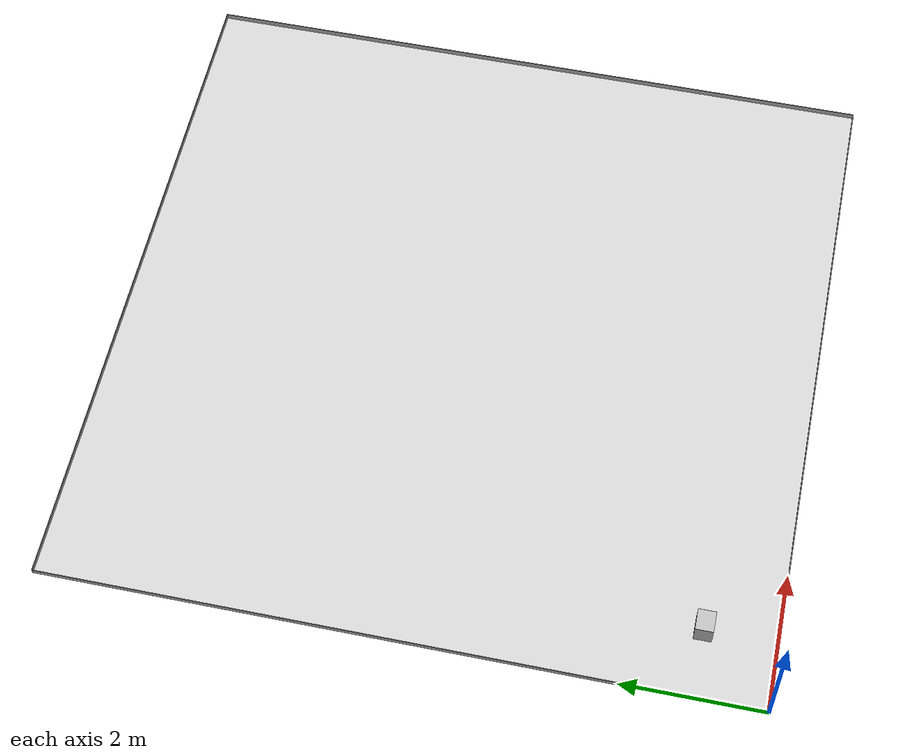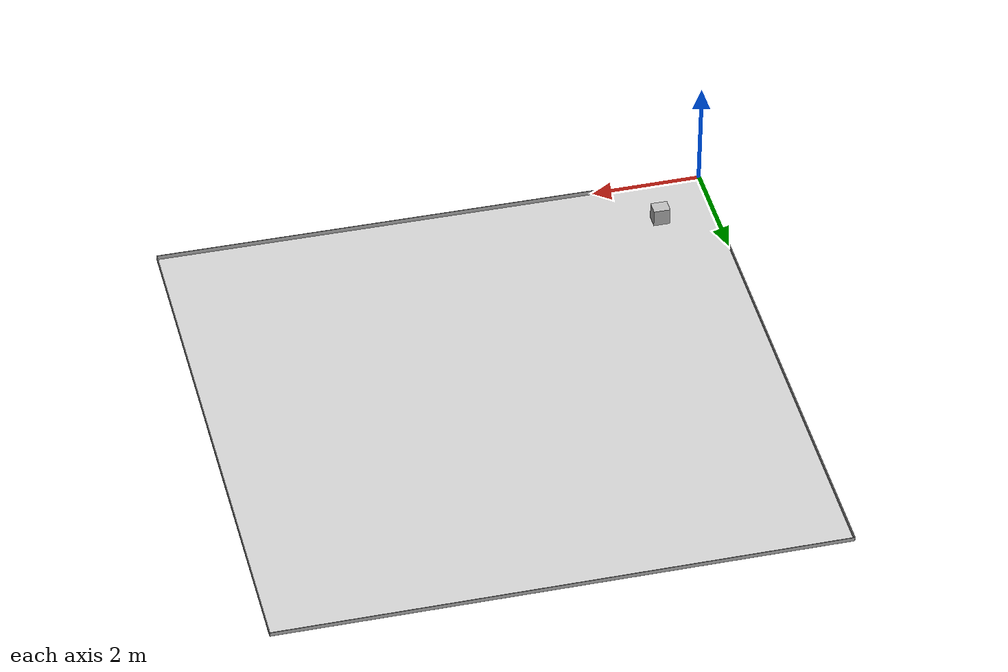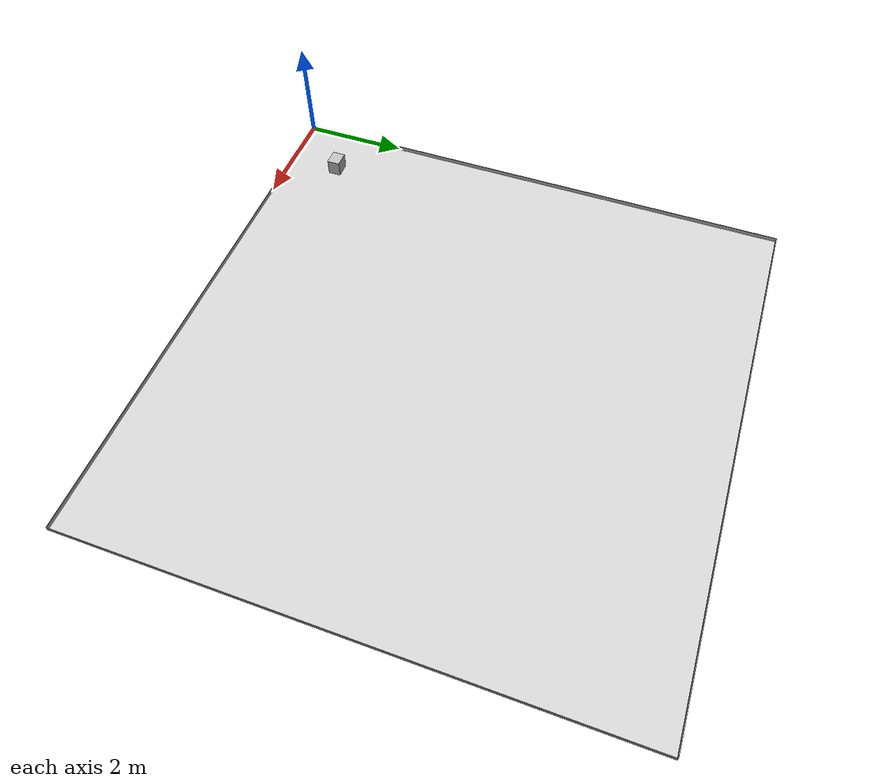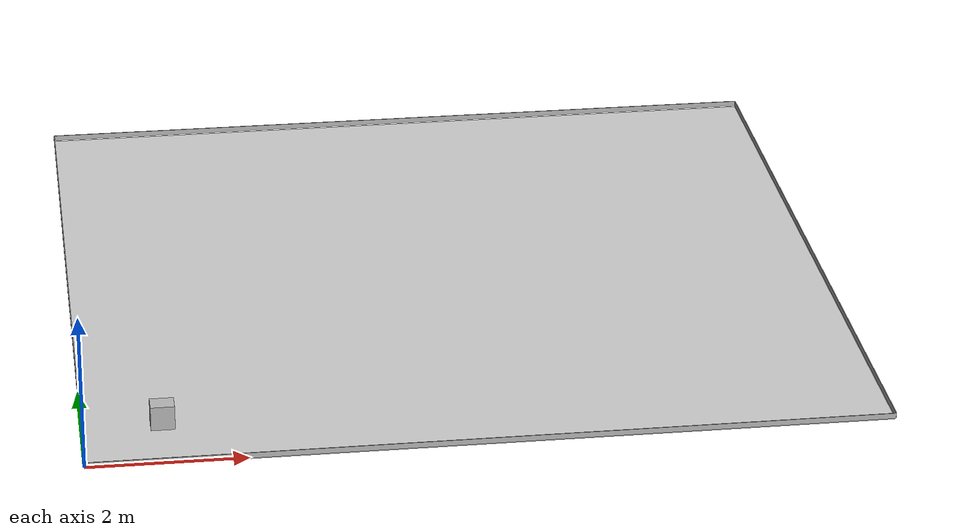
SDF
<sdf version='1.4'>
  <world name='default'>
    <!-- A global light source -->
    <include>
      <uri>model://sun</uri>
    </include>

    <include>
      <uri>model://arena</uri>
      <pose>0 0 0 0 0 0</pose>
    </include>

    <include>
      <uri>model://simple_robot</uri>
      <pose>1 1 0 0 0 0</pose>
    </include>

    <scene>
      <ambient>0.4 0.4 0.4 1</ambient>
      <background>0.7 0.7 0.7 1</background>
      <shadows>1</shadows>
    </scene>

    <physics type="ode">
      <real_time_update_rate>1000.0</real_time_update_rate>
      <max_step_size>0.001</max_step_size>
      <real_time_factor>1</real_time_factor>
      <ode>
        <solver>
          <type>quick</type>
          <iters>150</iters>
          <precon_iters>0</precon_iters>
          <sor>1.400000</sor>
          <use_dynamic_moi_rescaling>1</use_dynamic_moi_rescaling>
        </solver>
        <constraints>
          <cfm>0.00001</cfm>
          <erp>0.2</erp>
          <contact_max_correcting_vel>2000.000000</contact_max_correcting_vel>
          <contact_surface_layer>0.01000</contact_surface_layer>
        </constraints>
      </ode>
    </physics>

  </world>
</sdf>

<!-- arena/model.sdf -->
<sdf version='1.6'>
  <model name='arena'>
    <static>1</static>

    <link name='ground'>
      <pose frame=''>5 5 0 0 0 0</pose>
      <collision name='collision'>
        <geometry>
          <plane>
            <normal>0 0 1</normal>
            <size>10 10</size>
          </plane>
        </geometry>
        <surface>
          <friction>
            <ode>
              <mu>100</mu>
              <mu2>50</mu2>
            </ode>
          </friction>
        </surface>
      </collision>
      <visual name='visual'>
        <cast_shadows>0</cast_shadows>
        <geometry>
          <plane>
            <normal>0 0 1</normal>
            <size>10 10</size>
          </plane>
        </geometry>
        <material name="orange"/>
      </visual>
    </link>

    <link name='wall_1'>
      <pose>5 -0.005 0.035 0 0 0</pose>
      <visual name='visual'>
        <geometry>
          <box>
            <size>10.005 0.01 0.07</size>
          </box>
        </geometry>
      </visual>
      <collision name='collision'>
        <geometry>
          <box>
            <size>10.005 0.01 0.07</size>
          </box>
        </geometry>
      </collision>
    </link>

    <link name='wall_2'>
      <pose>5 10.005 0.035 0 0 0</pose>
      <visual name='visual'>
        <geometry>
          <box>
            <size>10.005 0.01 0.07</size>
          </box>
        </geometry>
      </visual>
      <collision name='collision'>
        <geometry>
          <box>
            <size>10.005 0.01 0.07</size>
          </box>
        </geometry>
      </collision>
    </link>

    <link name='wall_3'>
      <pose>-0.005 5 0.035 0 0 1.5708</pose>
      <visual name='visual'>
        <geometry>
          <box>
            <size>10 0.01 0.07</size>
          </box>
        </geometry>
        </visual>
      <collision name='collision'>
        <geometry>
          <box>
            <size>10 0.01 0.07</size>
          </box>
        </geometry>
        </collision>
    </link>

    <link name='wall_4'>
      <pose>10.005 5 0.035 0 -0 1.5708</pose>
      <visual name='visual'>
        <geometry>
          <box>
            <size>10 0.01 0.07</size>
          </box>
        </geometry>
      </visual>
      <collision name='collision'>
        <geometry>
          <box>
            <size>10 0.01 0.07</size>
          </box>
        </geometry>
      </collision>
    </link>
  </model>
</sdf>

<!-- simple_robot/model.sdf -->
<sdf version='1.4'>
  <model name="simple_robot">
    <static>false</static>

    <link name="chassis">
      <pose>0 0 .1 0 0 0</pose>
      <gravity>true</gravity>

      <inertial>
        <pose>0 0 0 0 0 0</pose>
        <mass>5</mass>
        <inertia>
          <ixx>0.092708</ixx>
          <ixy>0</ixy>
          <ixz>0</ixz>
          <iyy>0.104167</iyy>
          <iyz>0</iyz>
          <izz>0.063542</izz>
        </inertia>
      </inertial>

      <collision name="collision">
        <geometry>
          <box>
            <size>.3 .25 .4</size>
          </box>
        </geometry>
      </collision>

      <visual name="visual">
        <pose>0 0 0 0 0 0</pose>
        <geometry>
          <box>
            <size>.3 .25 .4</size>
          </box>
        </geometry>
      </visual>

      <collision name="caster_collision">
        <pose>-0.075 0 -0.2 0 0 0</pose>
        <geometry>
          <sphere>
            <radius>.05</radius>
          </sphere>
        </geometry>

        <surface>
          <friction>
            <ode>
              <mu>0</mu>
              <mu2>0</mu2>
              <slip1>1.0</slip1>
              <slip2>1.0</slip2>
            </ode>
          </friction>
        </surface>
      </collision>

      <visual name="caster_visual">
        <pose>-0.075 0 -0.2 0 0 0</pose>
        <geometry>
          <sphere>
            <radius>.05</radius>
          </sphere>
        </geometry>
      </visual>
    </link>

    <link name="left_wheel">
      <pose>0.1 0.13 -0.1 0 1.5707 1.5707</pose>
      <gravity>true</gravity>

      <inertial>
        <pose>0 0 0 0 0 0</pose>
        <mass>0.3</mass>
        <inertia>
          <ixx>0.00025</ixx>
          <ixy>0</ixy>
          <ixz>0</ixz>
          <iyy>0.00025</iyy>
          <iyz>0</iyz>
          <izz>0.000375</izz>
        </inertia>
      </inertial>

      <collision name="collision">
        <geometry>
          <cylinder>
            <radius>.05</radius>
            <length>.05</length>
          </cylinder>
        </geometry>
      </collision>

      <visual name="visual">
        <geometry>
          <cylinder>
            <radius>.05</radius>
            <length>.05</length>
          </cylinder>
        </geometry>
      </visual>
    </link>

    <joint type="revolute" name="left_wheel_hinge">
      <child>left_wheel</child>
      <parent>chassis</parent>
      <axis>
        <xyz>0 1 0</xyz>
      </axis>
    </joint>

    <link name="left_encoder_wheel">
      <pose>0.1 0.1 -0.1 0 1.5707 1.5707</pose>
      <gravity>true</gravity>

      <inertial>
        <pose>0 0 0 0 0 0</pose>
        <mass>0.03</mass>
        <inertia>
          <ixx>0.000019</ixx>
          <ixy>0</ixy>
          <ixz>0</ixz>
          <iyy>0.000019</iyy>
          <iyz>0</iyz>
          <izz>0.000038</izz>
        </inertia>
      </inertial>

      <collision name="collision">
        <geometry>
          <cylinder>
            <radius>.05</radius>
            <length>.005</length>
          </cylinder>
        </geometry>

        <surface>
          <friction>
            <ode>
              <mu>1</mu>
              <mu2>1</mu2>
              <slip1>0</slip1>
              <slip2>0</slip2>
            </ode>
          </friction>
        </surface>
      </collision>

      <visual name="visual">
        <geometry>
          <cylinder>
            <radius>.05</radius>
            <length>.005</length>
          </cylinder>
        </geometry>
      </visual>
    </link>

    <joint type="revolute" name="left_encoder">
      <child>left_encoder_wheel</child>
      <parent>chassis</parent>
      <axis>
        <xyz>0 1 0</xyz>
      </axis>
    </joint>

    <link name="right_wheel">
      <pose>0.1 -0.13 -0.1 0 1.5707 1.5707</pose>
      <gravity>true</gravity>

      <inertial>
        <pose>0 0 0 0 0 0</pose>
        <mass>0.3</mass>
        <inertia>
          <ixx>0.00025</ixx>
          <ixy>0</ixy>
          <ixz>0</ixz>
          <iyy>0.00025</iyy>
          <iyz>0</iyz>
          <izz>0.000375</izz>
        </inertia>
      </inertial>

      <collision name="collision">
        <geometry>
          <cylinder>
            <radius>.05</radius>
            <length>.05</length>
          </cylinder>
        </geometry>
      </collision>

      <visual name="visual">
        <geometry>
          <cylinder>
            <radius>.05</radius>
            <length>.05</length>
          </cylinder>
        </geometry>
      </visual>
    </link>

    <joint type="revolute" name="right_wheel_hinge">
      <child>right_wheel</child>
      <parent>chassis</parent>
      <axis>
        <xyz>0 1 0</xyz>
      </axis>
    </joint>

    <link name="right_encoder_wheel">
      <pose>0.1 -0.1 -0.1 0 1.5707 1.5707</pose>
      <gravity>true</gravity>

      <inertial>
        <pose>0 0 0 0 0 0</pose>
        <mass>0.03</mass>
        <inertia>
          <ixx>0.000019</ixx>
          <ixy>0</ixy>
          <ixz>0</ixz>
          <iyy>0.000019</iyy>
          <iyz>0</iyz>
          <izz>0.000038</izz>
        </inertia>
      </inertial>

      <collision name="collision">
        <geometry>
          <cylinder>
            <radius>.05</radius>
            <length>.005</length>
          </cylinder>
        </geometry>

        <surface>
          <friction>
            <ode>
              <mu>1</mu>
              <mu2>1</mu2>
              <slip1>0</slip1>
              <slip2>0</slip2>
            </ode>
          </friction>
        </surface>
      </collision>

      <visual name="visual">
        <geometry>
          <cylinder>
            <radius>.05</radius>
            <length>.005</length>
          </cylinder>
        </geometry>
      </visual>
    </link>

    <joint type="revolute" name="right_encoder">
      <child>right_encoder_wheel</child>
      <parent>chassis</parent>
      <axis>
        <xyz>0 1 0</xyz>
      </axis>
    </joint>

  <plugin name="control" filename="libcontrol_plugin.so"/>
  </model>
</sdf>
